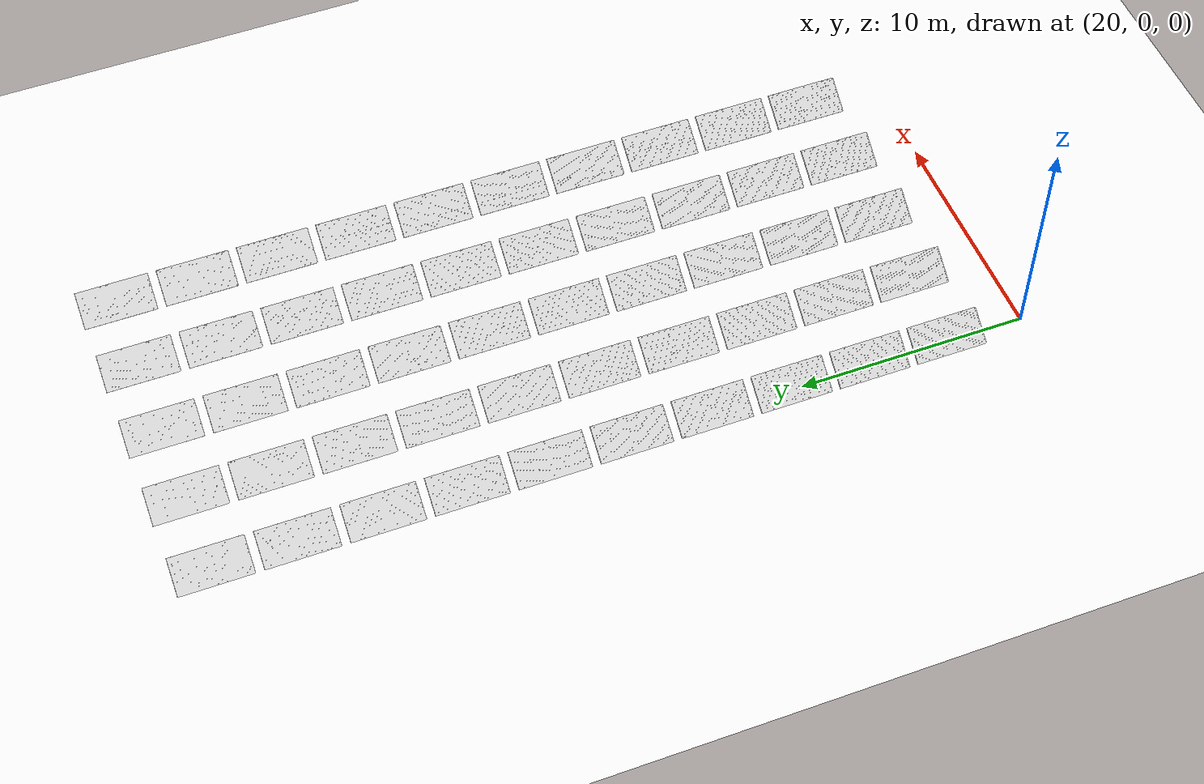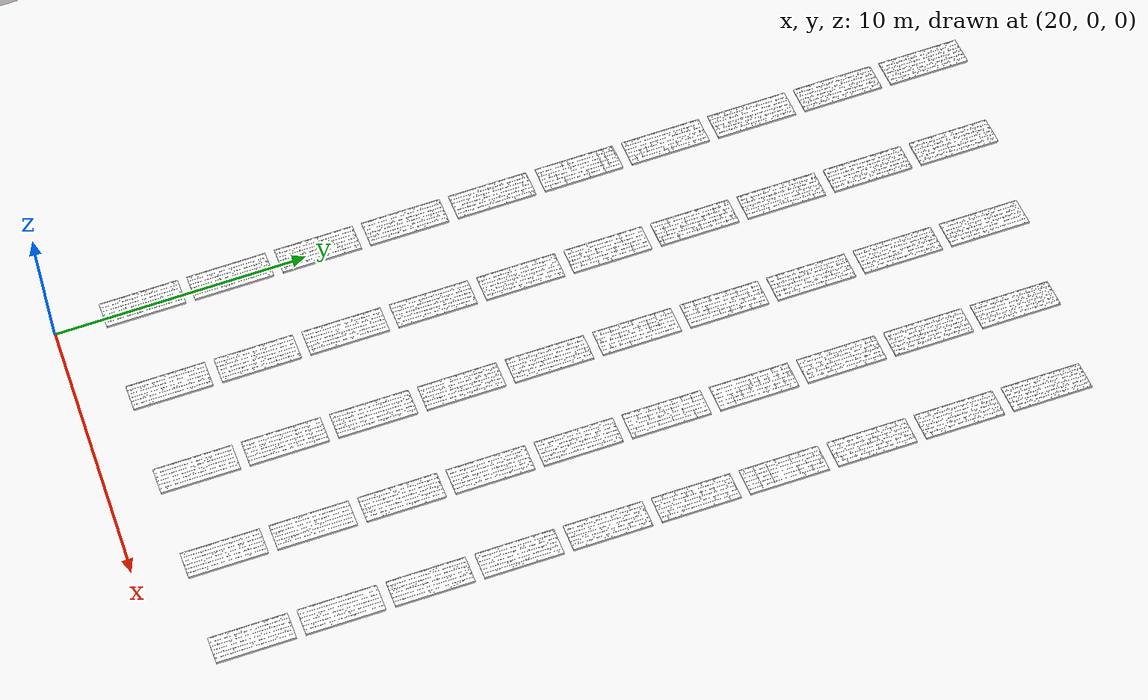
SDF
<?xml version="1.0"?>

<sdf version="1.6">
    <world name="solar_field">
        <physics name="4ms" type="ignored">
            <max_step_size>0.004</max_step_size>
            <real_time_factor>1.0</real_time_factor>
        </physics>
        <plugin
            filename="ignition-gazebo-physics-system"
            name="ignition::gazebo::systems::Physics">
        </plugin>
        <plugin
            filename="ignition-gazebo-scene-broadcaster-system"
            name="ignition::gazebo::systems::SceneBroadcaster">
        </plugin>
        <plugin
            filename="ignition-gazebo-user-commands-system"
            name="ignition::gazebo::systems::UserCommands">
        </plugin>
        <plugin
            filename="ignition-gazebo-sensors-system"
            name="ignition::gazebo::systems::Sensors">
            <render_engine>ogre2</render_engine>
        </plugin>

        <light type="directional"
            name="sun">
            <cast_shadows>true</cast_shadows>
            <pose>0 0 10 0 0 0</pose>
            <diffuse>0.8 0.8 0.8 1</diffuse>
            <specular>0.2 0.2 0.2 1</specular>
            <attenuation>
                <range>1000</range>
                <constant>0.9</constant>
                <linear>0.01</linear>
                <quadratic>0.001</quadratic>
            </attenuation>
            <direction>-0.5 0.1 -0.9</direction>
        </light>

        <scene>
            <sky>
                <clouds>
                    <speed>2</speed>
                </clouds>
            </sky>
        </scene>

        <include>
            <uri>model://grass_patch</uri>
        </include>
        <include>
            <uri>model://solar_panel</uri>
            <name>panel0</name>
            <pose>20 3.5 0.45 0 0.6 3.14</pose>
        </include>
        <include>
            <uri>model://solar_panel</uri>
            <name>panel1</name>
            <pose>20 7.0 0.45 0 0.6 3.14</pose>
        </include>
        <include>
            <uri>model://solar_panel</uri>
            <name>panel2</name>
            <pose>20 10.5 0.45 0 0.6 3.14</pose>
        </include>
        <include>
            <uri>model://solar_panel</uri>
            <name>panel3</name>
            <pose>20 14.0 0.45 0 0.6 3.14</pose>
        </include>
        <include>
            <uri>model://solar_panel</uri>
            <name>panel4</name>
            <pose>20 17.5 0.45 0 0.6 3.14</pose>
        </include>
        <include>
            <uri>model://solar_panel</uri>
            <name>panel5</name>
            <pose>20 21.0 0.45 0 0.6 3.14</pose>
        </include>
        <include>
            <uri>model://solar_panel</uri>
            <name>panel6</name>
            <pose>20 24.5 0.45 0 0.6 3.14</pose>
        </include>
        <include>
            <uri>model://solar_panel</uri>
            <name>panel7</name>
            <pose>20 28.0 0.45 0 0.6 3.14</pose>
        </include>
        <include>
            <uri>model://solar_panel</uri>
            <name>panel8</name>
            <pose>20 31.5 0.45 0 0.6 3.14</pose>
        </include>
        <include>
            <uri>model://solar_panel</uri>
            <name>panel9</name>
            <pose>20 35.0 0.45 0 0.6 3.14</pose>
        </include>
        <include>
            <uri>model://solar_panel</uri>
            <name>panel10</name>
            <pose>23.5 3.5 0.45 0 0.6 3.14</pose>
        </include>
        <include>
            <uri>model://solar_panel</uri>
            <name>panel11</name>
            <pose>23.5 7.0 0.45 0 0.6 3.14</pose>
        </include>
        <include>
            <uri>model://solar_panel</uri>
            <name>panel12</name>
            <pose>23.5 10.5 0.45 0 0.6 3.14</pose>
        </include>
        <include>
            <uri>model://solar_panel</uri>
            <name>panel13</name>
            <pose>23.5 14.0 0.45 0 0.6 3.14</pose>
        </include>
        <include>
            <uri>model://solar_panel</uri>
            <name>panel14</name>
            <pose>23.5 17.5 0.45 0 0.6 3.14</pose>
        </include>
        <include>
            <uri>model://solar_panel</uri>
            <name>panel15</name>
            <pose>23.5 21.0 0.45 0 0.6 3.14</pose>
        </include>
        <include>
            <uri>model://solar_panel</uri>
            <name>panel16</name>
            <pose>23.5 24.5 0.45 0 0.6 3.14</pose>
        </include>
        <include>
            <uri>model://solar_panel</uri>
            <name>panel17</name>
            <pose>23.5 28.0 0.45 0 0.6 3.14</pose>
        </include>
        <include>
            <uri>model://solar_panel</uri>
            <name>panel18</name>
            <pose>23.5 31.5 0.45 0 0.6 3.14</pose>
        </include>
        <include>
            <uri>model://solar_panel</uri>
            <name>panel19</name>
            <pose>23.5 35.0 0.45 0 0.6 3.14</pose>
        </include>
        <include>
            <uri>model://solar_panel</uri>
            <name>panel20</name>
            <pose>27.0 3.5 0.45 0 0.6 3.14</pose>
        </include>
        <include>
            <uri>model://solar_panel</uri>
            <name>panel21</name>
            <pose>27.0 7.0 0.45 0 0.6 3.14</pose>
        </include>
        <include>
            <uri>model://solar_panel</uri>
            <name>panel22</name>
            <pose>27.0 10.5 0.45 0 0.6 3.14</pose>
        </include>
        <include>
            <uri>model://solar_panel</uri>
            <name>panel23</name>
            <pose>27.0 14.0 0.45 0 0.6 3.14</pose>
        </include>
        <include>
            <uri>model://solar_panel</uri>
            <name>panel24</name>
            <pose>27.0 17.5 0.45 0 0.6 3.14</pose>
        </include>
        <include>
            <uri>model://solar_panel</uri>
            <name>panel25</name>
            <pose>27.0 21.0 0.45 0 0.6 3.14</pose>
        </include>
        <include>
            <uri>model://solar_panel</uri>
            <name>panel26</name>
            <pose>27.0 24.5 0.45 0 0.6 3.14</pose>
        </include>
        <include>
            <uri>model://solar_panel</uri>
            <name>panel27</name>
            <pose>27.0 28.0 0.45 0 0.6 3.14</pose>
        </include>
        <include>
            <uri>model://solar_panel</uri>
            <name>panel28</name>
            <pose>27.0 31.5 0.45 0 0.6 3.14</pose>
        </include>
        <include>
            <uri>model://solar_panel</uri>
            <name>panel29</name>
            <pose>27.0 35.0 0.45 0 0.6 3.14</pose>
        </include>
        <include>
            <uri>model://solar_panel</uri>
            <name>panel30</name>
            <pose>30.5 3.5 0.45 0 0.6 3.14</pose>
        </include>
        <include>
            <uri>model://solar_panel</uri>
            <name>panel31</name>
            <pose>30.5 7.0 0.45 0 0.6 3.14</pose>
        </include>
        <include>
            <uri>model://solar_panel</uri>
            <name>panel32</name>
            <pose>30.5 10.5 0.45 0 0.6 3.14</pose>
        </include>
        <include>
            <uri>model://solar_panel</uri>
            <name>panel33</name>
            <pose>30.5 14.0 0.45 0 0.6 3.14</pose>
        </include>
        <include>
            <uri>model://solar_panel</uri>
            <name>panel34</name>
            <pose>30.5 17.5 0.45 0 0.6 3.14</pose>
        </include>
        <include>
            <uri>model://solar_panel</uri>
            <name>panel35</name>
            <pose>30.5 21.0 0.45 0 0.6 3.14</pose>
        </include>
        <include>
            <uri>model://solar_panel</uri>
            <name>panel36</name>
            <pose>30.5 24.5 0.45 0 0.6 3.14</pose>
        </include>
        <include>
            <uri>model://solar_panel</uri>
            <name>panel37</name>
            <pose>30.5 28.0 0.45 0 0.6 3.14</pose>
        </include>
        <include>
            <uri>model://solar_panel</uri>
            <name>panel38</name>
            <pose>30.5 31.5 0.45 0 0.6 3.14</pose>
        </include>
        <include>
            <uri>model://solar_panel</uri>
            <name>panel39</name>
            <pose>30.5 35.0 0.45 0 0.6 3.14</pose>
        </include>
        <include>
            <uri>model://solar_panel</uri>
            <name>panel40</name>
            <pose>34.0 3.5 0.45 0 0.6 3.14</pose>
        </include>
        <include>
            <uri>model://solar_panel</uri>
            <name>panel41</name>
            <pose>34.0 7.0 0.45 0 0.6 3.14</pose>
        </include>
        <include>
            <uri>model://solar_panel</uri>
            <name>panel42</name>
            <pose>34.0 10.5 0.45 0 0.6 3.14</pose>
        </include>
        <include>
            <uri>model://solar_panel</uri>
            <name>panel43</name>
            <pose>34.0 14.0 0.45 0 0.6 3.14</pose>
        </include>
        <include>
            <uri>model://solar_panel</uri>
            <name>panel44</name>
            <pose>34.0 17.5 0.45 0 0.6 3.14</pose>
        </include>
        <include>
            <uri>model://solar_panel</uri>
            <name>panel45</name>
            <pose>34.0 21.0 0.45 0 0.6 3.14</pose>
        </include>
        <include>
            <uri>model://solar_panel</uri>
            <name>panel46</name>
            <pose>34.0 24.5 0.45 0 0.6 3.14</pose>
        </include>
        <include>
            <uri>model://solar_panel</uri>
            <name>panel47</name>
            <pose>34.0 28.0 0.45 0 0.6 3.14</pose>
        </include>
        <include>
            <uri>model://solar_panel</uri>
            <name>panel48</name>
            <pose>34.0 31.5 0.45 0 0.6 3.14</pose>
        </include>
        <include>
            <uri>model://solar_panel</uri>
            <name>panel49</name>
            <pose>34.0 35.0 0.45 0 0.6 3.14</pose>
        </include>

    </world>
</sdf>

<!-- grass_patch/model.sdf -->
<sdf version='1.4'>
  <model name='grasspatch'>
    <static>true</static>
    <link name='link'>
      <collision name='collision'>
        <pose>0 0 0 0 0 0</pose>
        <geometry>
          <plane>
            <normal>0 0 1</normal>
            <size>100 100</size>
          </plane>
        </geometry>
        <surface>
          <friction>
            <ode>
              <mu>0.5</mu>
              <mu2>.5</mu2>
            </ode>
          </friction>
        </surface>
      </collision>

      <visual name='visual_s10'>
        <pose>0 0 0 0 0 0</pose>
        <cast_shadows>false</cast_shadows>
        <geometry>
          <plane>
            <normal>0 0 1</normal>
            <size>100 100</size>
          </plane>
        </geometry>
          <material>
         <diffuse>1.0 1.0 1.0</diffuse>
          <specular>1.0 1.0 1.0</specular>
		  <pbr>
			<metal>
			   <albedo_map>materials/textures/grass_dry.jpg</albedo_map>
			   <normal_map>materials/textures/grass_dry.jpg</normal_map>
			</metal>
		  </pbr>
		</material>
      </visual>

    </link>
  </model>
</sdf>

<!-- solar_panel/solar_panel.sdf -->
<sdf version="1.8">
  <model name="solar_panel">
  <static>true</static>
    <link name="testlink">
    <static>true</static>
      <visual name="S_LP">
        <geometry>
          <mesh>
            <uri>solar_panel.dae</uri>
            <scale>0.04 0.04 0.04</scale>
            <submesh>
              <name>S_LP</name>
            </submesh>
          </mesh>
        </geometry>
        <material>
          <diffuse>1.0 1.0 1.0 1.0</diffuse>
          <specular>0.0 0.0 0.0 1.0</specular>
          <pbr>
            <metal>
              <albedo_map>meshes/wire_154215229_baseColor.png</albedo_map>
            </metal>
          </pbr>
        </material>
      </visual>
      <collision name="collision">
        <geometry>
          <mesh>
            <uri>solar_panel.dae</uri>
            <scale>0.04 0.04 0.04</scale>
          </mesh>
        </geometry>
        <surface/>
        <contact/>
        <collide_bitmask>0x01</collide_bitmask>
      </collision>
    </link>
        <include>
            <name>gps</name>
            <uri>model://gps</uri>
            <plugin
                filename="ignition-gazebo-odometry-publisher-system"
                name="ignition::gazebo::systems::OdometryPublisher">
                <dimensions>3</dimensions>
                <odom_publish_frequency>100</odom_publish_frequency>
            </plugin>
        </include>
  </model>
</sdf>

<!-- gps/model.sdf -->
<sdf version="1.6">
  <model name="gps">
    <link name="link">
      <pose>0 0 0 0 0 0</pose>
      <inertial>
        <pose>0 0 0 0 0 0</pose>
        <mass>0.015</mass>
        <inertia>
          <ixx>1e-05</ixx>
          <ixy>0</ixy>
          <ixz>0</ixz>
          <iyy>1e-05</iyy>
          <iyz>0</iyz>
          <izz>1e-05</izz>
        </inertia>
      </inertial>
      <visual name="visual">
        <geometry>
          <cylinder>
            <radius>0.01</radius>
            <length>0.002</length>
          </cylinder>
        </geometry>
        <material>
          <script>
            <name>Gazebo/Black</name>
            <uri>file://usr/share/gz/gz-sim8/media/gazebo.material</uri>
          </script>
        </material>
      </visual>
      <sensor name="gps" type="gps">
        <pose>0 0 0 0 0 0</pose>
        <update_rate>5.0</update_rate>
        <always_on>true</always_on>
        <visualize>false</visualize>
        <!-- GpsSensor noise currently not used -->
        <plugin name="gps_plugin" filename="libgazebo_gps_plugin.so">
          <robotNamespace></robotNamespace>
          <gpsNoise>true</gpsNoise>
          <gpsXYRandomWalk>2.0</gpsXYRandomWalk>
          <gpsZRandomWalk>4.0</gpsZRandomWalk>
          <gpsXYNoiseDensity>2.0e-4</gpsXYNoiseDensity>
          <gpsZNoiseDensity>4.0e-4</gpsZNoiseDensity>
          <gpsVXYNoiseDensity>0.2</gpsVXYNoiseDensity>
          <gpsVZNoiseDensity>0.4</gpsVZNoiseDensity>
        </plugin>
      </sensor>
    </link>
  </model>
</sdf>
